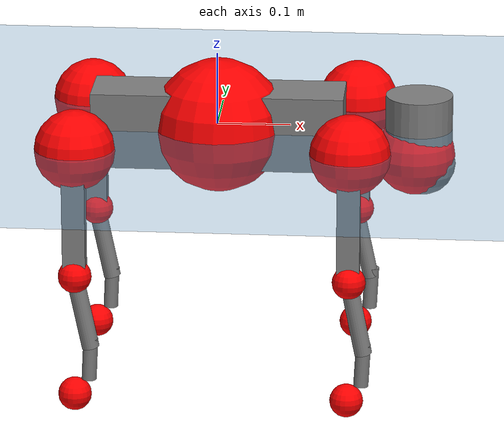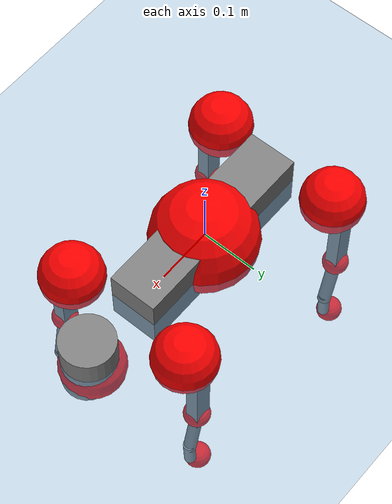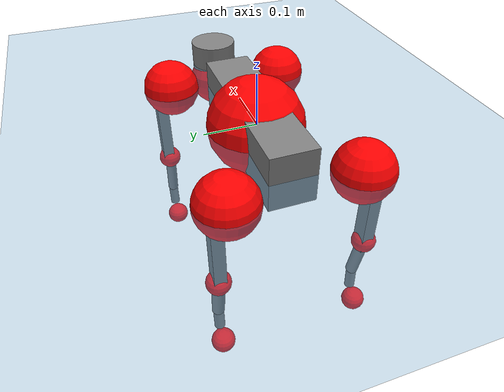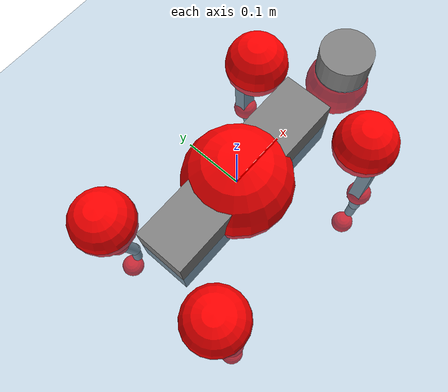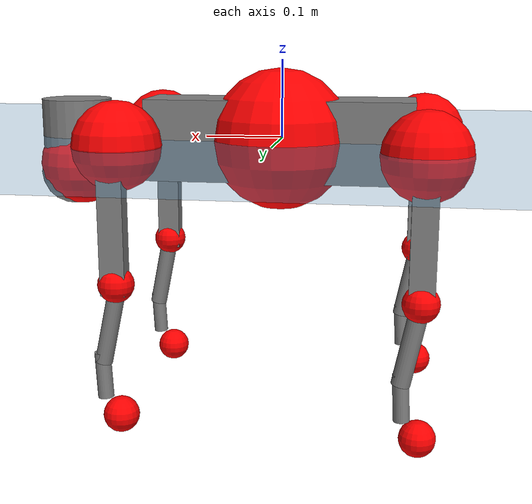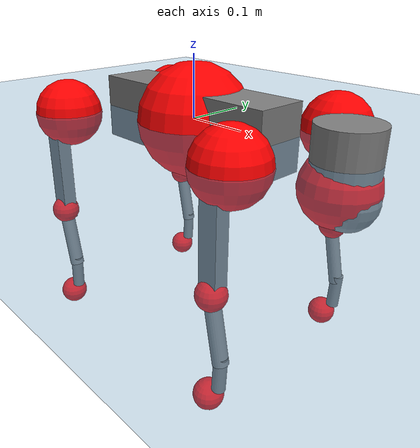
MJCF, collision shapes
<mujoco model="go2">
  <compiler angle="radian" assetdir="assets" balanceinertia="true" inertiafromgeom="false"/>

  <option timestep="0.005" density="1.2" viscosity="2e-05"/>

  <size nkey="1"/>

  <visual>
    <quality shadowsize="8192"/>
    <map shadowclip="0.5"/>
  </visual>

  <default>
    <default class="/">
      <geom contype="0" conaffinity="0" group="1" solref="-1000 -80"/>
      <site size="0.01 0.005 0.005" group="5"/>
      <general forcelimited="true" biastype="affine" gainprm="20" biasprm="0 -20 -0.5"/>
      <default class="go2">
        <joint armature="0.01" damping="0.01" frictionloss="0.2"/>
        <geom condim="1" margin="0.001"/>
        <default class="visual">
          <geom type="mesh" group="2"/>
        </default>
        <default class="collision">
          <geom group="3"/>
          <default class="foot">
            <geom size="0.022 0 0" condim="6" priority="1" friction="0.8 0.02 0.01" solimp="0.015 1 0.022"/>
          </default>
        </default>
        <default class="reward_collision_sphere">
          <geom group="5" rgba="1 0 0 1"/>
        </default>
      </default>
    </default>
  </default>

  <asset>
    <texture type="skybox" colorspace="auto" name="//unnamed_texture_0" builtin="gradient" rgb1="0.95 0.95 0.95" rgb2="0.95 0.95 0.95" width="100" height="600"/>
    <texture type="2d" colorspace="auto" name="texplane" builtin="checker" rgb1="0.345 0.575 0.748" rgb2="0.345 0.575 0.748" markrgb="1 1 1" width="512" height="512"/>
    <material name="MatPlane" class="/" texture="texplane" texuniform="true" texrepeat="2 2" specular="0.9"/>
    <material name="metal" class="/" rgba="0.9 0.95 0.95 1"/>
    <material name="black" class="/" rgba="0 0 0 1"/>
    <material name="white" class="/"/>
    <material name="gray" class="/" rgba="0.671705 0.692426 0.77427 1"/>
    <mesh name="base_0" class="/" file="base_0.obj"/>
    <mesh name="base_1" class="/" file="base_1.obj"/>
    <mesh name="base_2" class="/" file="base_2.obj"/>
    <mesh name="base_3" class="/" file="base_3.obj"/>
    <mesh name="base_4" class="/" file="base_4.obj"/>
    <mesh name="hip_0" class="/" file="hip_0.obj"/>
    <mesh name="hip_1" class="/" file="hip_1.obj"/>
    <mesh name="thigh_0" class="/" file="thigh_0.obj"/>
    <mesh name="thigh_1" class="/" file="thigh_1.obj"/>
    <mesh name="thigh_mirror_0" class="/" file="thigh_mirror_0.obj"/>
    <mesh name="thigh_mirror_1" class="/" file="thigh_mirror_1.obj"/>
    <mesh name="calf_0" class="/" file="calf_0.obj"/>
    <mesh name="calf_1" class="/" file="calf_1.obj"/>
    <mesh name="calf_mirror_0" class="/" file="calf_mirror_0.obj"/>
    <mesh name="calf_mirror_1" class="/" file="calf_mirror_1.obj"/>
    <mesh name="foot" class="/" file="foot.obj"/>
  </asset>

  <worldbody>
    <geom name="floor" class="/" size="100 100 0.125" type="plane" group="0" material="MatPlane"/>
    <light name="toplight_shadow" class="/" pos="0 0 5" dir="0.0990148 0.0990148 -0.990148" type="directional" ambient="0.04 0.04 0.04" diffuse="0.55 0.55 0.55" specular="0.12 0.12 0.12"/>
    <light name="toplight_fill" class="/" pos="0 0 5" dir="0.0990148 0.0990148 -0.990148" type="directional" castshadow="false" ambient="0.04 0.04 0.04" diffuse="0.3 0.3 0.3" specular="0.08 0.08 0.08"/>
    <body name="trunk" childclass="go2" pos="0.00205377 0.000513755 -0.0017085" quat="0.999999 -0.000825504 0.000192655 0.000928476">
      <inertial pos="0.0177993 0.00166639 -0.00339341" quat="0.000650999 0.710306 -0.0007682 0.703892" mass="5.25145" diaginertia="0.0887472 0.091054 0.00829761"/>
      <joint name="//unnamed_joint_0" type="free" armature="0" damping="0" frictionloss="0"/>
      <geom name="//unnamed_geom_1" class="visual" material="black" mesh="base_0"/>
      <geom name="//unnamed_geom_2" class="visual" material="black" mesh="base_1"/>
      <geom name="//unnamed_geom_3" class="visual" material="black" mesh="base_2"/>
      <geom name="//unnamed_geom_4" class="visual" material="white" mesh="base_3"/>
      <geom name="//unnamed_geom_5" class="visual" material="gray" mesh="base_4"/>
      <geom name="trunk_1" class="collision" size="0.172223 0.042804 0.0521889" type="box"/>
      <geom name="trunk_2" class="collision" size="0.0457797 0.0412017" pos="0.273955 0 0.00802434" type="cylinder"/>
      <geom name="trunk_3" class="collision" size="0.0430329" pos="0.281645 0 -0.0481461"/>
      <geom name="//unnamed_geom_9" class="reward_collision_sphere" size="0.0915594"/>
      <geom name="//unnamed_geom_10" class="reward_collision_sphere" size="0.0549356" pos="0.269149 0 -0.0361095"/>
      <site name="imu" pos="-0.0210864 0.0107816 0.0470383" size="0.00915594"/>
      <camera name="track" pos="0 -1.9662 0" quat="0.707107 0.707107 0 0" mode="trackcom"/>
      <camera name="ego_camera" pos="0.299909 0 0.0361095" quat="-0.5 -0.5 0.5 0.5"/>
      <body name="FL_hip" pos="0.185363 0.0470831 0.00278333" quat="1 -0.000510088 -4.01166e-05 0.000416553">
        <inertial pos="-0.00564787 -0.000549607 0.00122835" quat="0.496745 0.502967 0.503362 0.496886" mass="0.505059" diaginertia="0.000737537 0.00055632 0.000159966"/>
        <joint name="FL_hip_joint" pos="0 0 0" axis="0.999953 0.00940804 0.00233243" range="-1.00448 1.06978" armature="0.00907472" damping="0.0182204" frictionloss="0.18026"/>
        <geom name="//unnamed_geom_11" class="visual" material="metal" mesh="hip_0"/>
        <geom name="//unnamed_geom_12" class="visual" material="gray" mesh="hip_1"/>
        <geom name="//unnamed_geom_13" class="collision" size="0.0421173 0.0183119" pos="0 0.0786482 0" quat="0.707107 0.707107 0 0" type="cylinder"/>
        <geom name="//unnamed_geom_14" class="reward_collision_sphere" size="0.0549356" pos="0 0.0688171 0"/>
        <body name="FL_thigh" pos="0.000606289 0.0945095 0.00302515" quat="0.999999 -0.000750118 -0.000837204 -0.00065991">
          <inertial pos="-0.00126331 -0.0243037 -0.0287229" quat="0.829491 0.0845125 -0.0198236 0.551734" mass="0.857329" diaginertia="0.00482276 0.00514238 0.000288929"/>
          <joint name="FL_thigh_joint" pos="0 0 0" axis="0.00139016 0.999996 -0.00263997" range="-1.53254 3.48973" armature="0.00865882" damping="0.0147442" frictionloss="0.176984"/>
          <geom name="//unnamed_geom_15" class="visual" material="metal" mesh="thigh_0"/>
          <geom name="//unnamed_geom_16" class="visual" material="gray" mesh="thigh_1"/>
          <geom name="//unnamed_geom_17" class="collision" size="0.0975107 0.011216 0.0155651" pos="0 0 -0.0854592" quat="0.707107 0 0.707107 0" type="box"/>
          <body name="FL_calf" pos="-0.000865118 -0.00271495 -0.171168" quat="0.999999 0.000457711 -0.00102585 0.00051711">
            <inertial pos="0.00331282 -0.000611558 -0.110233" quat="0.708678 0.0056961 -0.00318572 0.705502" mass="0.184933" diaginertia="0.00121503 0.00142019 1.81344e-05"/>
            <joint name="FL_calf_joint" pos="0 0 0" axis="-0.00738536 0.999851 0.0156316" stiffness="0.0129144" range="-2.7743 -0.848228" armature="0.00996314" damping="0" frictionloss="0.20201"/>
            <geom name="//unnamed_geom_18" class="visual" material="gray" mesh="calf_0"/>
            <geom name="//unnamed_geom_19" class="visual" material="black" mesh="calf_1"/>
            <geom name="FL_calf0" class="collision" size="0.0109871 0.0549356" pos="0.00768996 0 -0.0481461" quat="0.994493 0 -0.104807 0" type="cylinder"/>
            <geom name="//unnamed_geom_21" class="collision" size="0.0100715 0.0297568" pos="0.0192249 0 -0.11876" quat="0.999688 0 0.0249974 0" type="cylinder"/>
            <geom name="//unnamed_geom_22" class="visual" pos="0 0 -0.170918" quat="1 0 0 0" material="black" mesh="foot"/>
            <geom name="FL_foot" class="foot" size="0.0178181" pos="-0.00192249 0 -0.170918"/>
            <geom name="//unnamed_geom_24" class="reward_collision_sphere" size="0.0228898"/>
            <geom name="//unnamed_geom_25" class="reward_collision_sphere" size="0.0228898" pos="-0.00192249 0 -0.170918"/>
            <site name="FL_foot" class="foot" pos="-0.00192249 0 -0.170918" size="0.00915594"/>
          </body>
        </body>
      </body>
      <body name="FR_hip" pos="0.185542 -0.0458188 -0.0016216" quat="0.999999 -0.00124525 -0.000124019 0.00028535">
        <inertial pos="-0.00282171 -0.00457761 4.22715e-05" quat="0.510194 0.500972 0.494668 0.493997" mass="0.515429" diaginertia="0.00068063 0.000531856 0.000150214"/>
        <joint name="FR_hip_joint" pos="0 0 0" axis="0.99991 0.00289391 0.013063" range="-1.03813 1.05046" armature="0.00918472" damping="0.00730426" frictionloss="0.157949"/>
        <geom name="//unnamed_geom_26" class="visual" pos="0 1.5739e-09 6.7508e-08" quat="4.63268e-05 1 0 0" material="metal" mesh="hip_0"/>
        <geom name="//unnamed_geom_27" class="visual" pos="0 2.55149e-09 -1.66973e-07" quat="4.63268e-05 1 0 0" material="gray" mesh="hip_1"/>
        <geom name="//unnamed_geom_28" class="collision" size="0.0421173 0.0183119" pos="0 -0.0786482 0" quat="0.707107 0.707107 0 0" type="cylinder"/>
        <geom name="//unnamed_geom_29" class="reward_collision_sphere" size="0.0549356" pos="0 -0.0688171 0"/>
        <body name="FR_thigh" pos="0.000139624 -0.0958855 0.00108853" quat="1 0.000172604 -4.62288e-06 -8.97719e-05">
          <inertial pos="-0.00104093 0.0192703 -0.0253929" quat="0.555434 -0.0313943 0.0885476 0.826236" mass="0.891464" diaginertia="0.00482164 0.00521855 0.000295776"/>
          <joint name="FR_thigh_joint" pos="0 0 0" axis="0.000248062 -0.999986 0.00531151" range="-3.46959 1.62451" armature="0.00912424" damping="0.0105923" frictionloss="0.197055"/>
          <geom name="//unnamed_geom_30" class="visual" material="metal" mesh="thigh_mirror_0"/>
          <geom name="//unnamed_geom_31" class="visual" material="gray" mesh="thigh_mirror_1"/>
          <geom name="//unnamed_geom_32" class="collision" size="0.0975107 0.011216 0.0155651" pos="0 0 -0.0854592" quat="0.707107 0 0.707107 0" type="box"/>
          <body name="FR_calf" pos="0.00132334 -0.00305001 -0.171647" quat="1 -1.60449e-05 2.39669e-06 -4.5598e-05">
            <inertial pos="0.00609866 0.000233267 -0.113129" quat="0.708764 0.00611047 0.00436179 0.705406" mass="0.185742" diaginertia="0.00122672 0.00134638 1.71167e-05"/>
            <joint name="FR_calf_joint" pos="0 0 0" axis="0.00836987 -0.999921 -0.0094038" range="0.828004 2.776" armature="0.00893847" damping="0.02628" frictionloss="0.172508"/>
            <geom name="//unnamed_geom_33" class="visual" material="gray" mesh="calf_mirror_0"/>
            <geom name="//unnamed_geom_34" class="visual" material="black" mesh="calf_mirror_1"/>
            <geom name="FR_calf0" class="collision" size="0.0119027 0.0549356" pos="0.00961245 0 -0.0481461" quat="0.995004 0 -0.0998334 0" type="cylinder"/>
            <geom name="//unnamed_geom_36" class="collision" size="0.0100715 0.0297568" pos="0.0192249 0 -0.11876" quat="0.999688 0 0.0249974 0" type="cylinder"/>
            <geom name="//unnamed_geom_37" class="visual" pos="0 0 -0.170918" quat="1 0 0 0" material="black" mesh="foot"/>
            <geom name="FR_foot" class="foot" size="0.0211426" pos="-0.00192249 0 -0.170918"/>
            <geom name="//unnamed_geom_39" class="reward_collision_sphere" size="0.0228898"/>
            <geom name="//unnamed_geom_40" class="reward_collision_sphere" size="0.0228898" pos="-0.00192249 0 -0.170918"/>
            <site name="FR_foot" class="foot" pos="-0.00192249 0 -0.170918" size="0.00915594"/>
          </body>
        </body>
      </body>
      <body name="RL_hip" pos="-0.185575 0.0457214 -0.0030709" quat="1 -8.79315e-06 -9.85861e-06 3.18647e-05">
        <inertial pos="0.00591959 0.00454135 -0.00262733" quat="0.512388 0.492814 0.498671 0.495903" mass="0.531397" diaginertia="0.000711845 0.000539485 0.000163353"/>
        <joint name="RL_hip_joint" pos="0 0 0" axis="-0.999864 -0.00534184 -0.0156184" stiffness="0.0122721" range="-1.02812 0.997146" armature="0.0079808" damping="0.00316178" frictionloss="0.207513"/>
        <geom name="//unnamed_geom_41" class="visual" pos="-1.3835e-09 0 -2.71197e-07" quat="4.63268e-05 0 1 0" material="metal" mesh="hip_0"/>
        <geom name="//unnamed_geom_42" class="visual" pos="-2.24281e-09 0 -2.40513e-07" quat="4.63268e-05 0 1 0" material="gray" mesh="hip_1"/>
        <geom name="//unnamed_geom_43" class="collision" size="0.0421173 0.0183119" pos="0 0.0786482 0" quat="0.707107 0.707107 0 0" type="cylinder"/>
        <geom name="//unnamed_geom_44" class="reward_collision_sphere" size="0.0549356" pos="0 0.0688171 0"/>
        <body name="RL_thigh" pos="0.000244948 0.0904077 0.00213226" quat="1 -0.000457398 -0.000107328 -7.98194e-05">
          <inertial pos="-0.00343454 -0.0214855 -0.0271857" quat="0.828738 0.0879316 -0.0212656 0.552277" mass="0.908336" diaginertia="0.00487326 0.00528501 0.000301253"/>
          <joint name="RL_thigh_joint" pos="0 0 0" axis="-0.00475829 0.999884 0.0144877" stiffness="0.0122383" range="-0.528401 4.54188" armature="0.0103763" damping="0" frictionloss="0.183768"/>
          <geom name="//unnamed_geom_45" class="visual" material="metal" mesh="thigh_0"/>
          <geom name="//unnamed_geom_46" class="visual" material="gray" mesh="thigh_1"/>
          <geom name="//unnamed_geom_47" class="collision" size="0.0975107 0.011216 0.0155651" pos="0 0 -0.0854592" quat="0.707107 0 0.707107 0" type="box"/>
          <body name="RL_calf" pos="0.000319632 0.000248776 -0.173433" quat="1 0.000175012 -0.000181471 -4.24121e-05">
            <inertial pos="0.00531871 0.00173938 -0.113599" quat="0.712175 0.00201208 -0.0145349 0.701849" mass="0.186113" diaginertia="0.00119716 0.00134779 1.73082e-05"/>
            <joint name="RL_calf_joint" pos="0 0 0" axis="-0.000397701 1 6.14964e-05" range="-2.72241 -0.804652" armature="0.0100995" damping="0" frictionloss="0.204273"/>
            <geom name="//unnamed_geom_48" class="visual" material="gray" mesh="calf_0"/>
            <geom name="//unnamed_geom_49" class="visual" material="black" mesh="calf_1"/>
            <geom name="RL_calf0" class="collision" size="0.0119027 0.0549356" pos="0.00961245 0 -0.0481461" quat="0.995004 0 -0.0998334 0" type="cylinder"/>
            <geom name="//unnamed_geom_51" class="collision" size="0.0100715 0.0297568" pos="0.0192249 0 -0.11876" quat="0.999688 0 0.0249974 0" type="cylinder"/>
            <geom name="//unnamed_geom_52" class="visual" pos="0 0 -0.170918" quat="1 0 0 0" material="black" mesh="foot"/>
            <geom name="RL_foot" class="foot" size="0.0165172" pos="-0.00192249 0 -0.170918"/>
            <geom name="//unnamed_geom_54" class="reward_collision_sphere" size="0.0228898"/>
            <geom name="//unnamed_geom_55" class="reward_collision_sphere" size="0.0228898" pos="-0.00192249 0 -0.170918"/>
            <site name="RL_foot" class="foot" pos="-0.00192249 0 -0.170918" size="0.00915594"/>
          </body>
        </body>
      </body>
      <body name="RR_hip" pos="-0.185034 -0.0483383 -0.00231413" quat="1 0.000372184 -7.46572e-05 -0.000868961">
        <inertial pos="0.00747278 0.00103869 -0.00261364" quat="0.493333 0.504808 0.50382 0.497953" mass="0.519817" diaginertia="0.000717848 0.000543596 0.000160592"/>
        <joint name="RR_hip_joint" pos="0 0 0" axis="-0.999934 0.0081795 0.00803487" stiffness="0.00910433" range="-1.02751 1.02868" armature="0.00831486" damping="0.00908144" frictionloss="0.174601"/>
        <geom name="//unnamed_geom_56" class="visual" pos="1.38425e-09 1.5739e-09 -3.38705e-07" quat="2.14617e-09 4.63268e-05 4.63268e-05 -1" material="metal" mesh="hip_0"/>
        <geom name="//unnamed_geom_57" class="visual" pos="2.24094e-09 2.55149e-09 -7.35404e-08" quat="2.14617e-09 4.63268e-05 4.63268e-05 -1" material="gray" mesh="hip_1"/>
        <geom name="//unnamed_geom_58" class="collision" size="0.0421173 0.0183119" pos="0 -0.0786482 0" quat="0.707107 0.707107 0 0" type="cylinder"/>
        <geom name="//unnamed_geom_59" class="reward_collision_sphere" size="0.0549356" pos="0 -0.0688171 0"/>
        <body name="RR_thigh" pos="0.000883345 -0.0938899 -0.00158197" quat="1 -9.37596e-05 3.59308e-05 -4.86173e-05">
          <inertial pos="-0.00228152 0.0221932 -0.0263067" quat="0.551996 -0.0221875 0.0834142 0.829367" mass="0.852544" diaginertia="0.00493796 0.00553007 0.000291263"/>
          <joint name="RR_thigh_joint" pos="0 0 0" axis="-0.00768745 -0.99997 0.000392245" stiffness="0.00510032" range="-4.54406 0.578377" armature="0.00955436" damping="0.00972864" frictionloss="0.174919"/>
          <geom name="//unnamed_geom_60" class="visual" material="metal" mesh="thigh_mirror_0"/>
          <geom name="//unnamed_geom_61" class="visual" material="gray" mesh="thigh_mirror_1"/>
          <geom name="//unnamed_geom_62" class="collision" size="0.0975107 0.011216 0.0155651" pos="0 0 -0.0854592" quat="0.707107 0 0.707107 0" type="box"/>
          <body name="RR_calf" pos="0.000195371 -0.00186164 -0.169706" quat="1 -0.000137766 9.39845e-05 -0.00017708">
            <inertial pos="0.00310602 -0.000464228 -0.114177" quat="0.701006 0.00259235 -0.00567441 0.713129" mass="0.187243" diaginertia="0.00124183 0.00135673 1.8371e-05"/>
            <joint name="RR_calf_joint" pos="0 0 0" axis="0.00661117 -0.999829 -0.0172812" stiffness="0.00227469" range="0.834569 2.7178" armature="0.00922335" damping="0.0242448" frictionloss="0.18434"/>
            <geom name="//unnamed_geom_63" class="visual" material="gray" mesh="calf_mirror_0"/>
            <geom name="//unnamed_geom_64" class="visual" material="black" mesh="calf_mirror_1"/>
            <geom name="RR_calf0" class="collision" size="0.0119027 0.0549356" pos="0.00961245 0 -0.0481461" quat="0.995004 0 -0.0998334 0" type="cylinder"/>
            <geom name="//unnamed_geom_66" class="collision" size="0.0100715 0.0297568" pos="0.0192249 0 -0.11876" quat="0.999688 0 0.0249974 0" type="cylinder"/>
            <geom name="//unnamed_geom_67" class="visual" pos="0 0 -0.170918" quat="1 0 0 0" material="black" mesh="foot"/>
            <geom name="RR_foot" class="foot" size="0.019681" pos="-0.00192249 0 -0.170918"/>
            <geom name="//unnamed_geom_69" class="reward_collision_sphere" size="0.0228898"/>
            <geom name="//unnamed_geom_70" class="reward_collision_sphere" size="0.0228898" pos="-0.00192249 0 -0.170918"/>
            <site name="RR_foot" class="foot" pos="-0.00192249 0 -0.170918" size="0.00915594"/>
          </body>
        </body>
      </body>
    </body>
  </worldbody>

  <contact>
    <pair class="/" geom1="floor" geom2="FL_foot" name="//unnamed_contact_0"/>
    <pair class="/" geom1="floor" geom2="FR_foot" name="//unnamed_contact_1"/>
    <pair class="/" geom1="floor" geom2="RL_foot" name="//unnamed_contact_2"/>
    <pair class="/" geom1="floor" geom2="RR_foot" name="//unnamed_contact_3"/>
  </contact>

  <actuator>
    <general name="FL_hip" class="/" joint="FL_hip_joint" forcerange="-21.7054 21.7054" gainprm="19.4836" biasprm="0 -19.4836 -0.427907"/>
    <general name="FL_thigh" class="/" joint="FL_thigh_joint" forcerange="-20.0709 20.0709" gainprm="19.4836" biasprm="0 -19.4836 -0.427907"/>
    <general name="FL_calf" class="/" joint="FL_calf_joint" forcerange="-43.1261 43.1261" gainprm="19.4836" biasprm="0 -19.4836 -0.427907"/>
    <general name="FR_hip" class="/" joint="FR_hip_joint" forcerange="-21.4787 21.4787" gainprm="19.4836" biasprm="0 -19.4836 -0.427907"/>
    <general name="FR_thigh" class="/" joint="FR_thigh_joint" forcerange="-23.3368 23.3368" gainprm="19.4836" biasprm="0 -19.4836 -0.427907"/>
    <general name="FR_calf" class="/" joint="FR_calf_joint" forcerange="-40.4397 40.4397" gainprm="19.4836" biasprm="0 -19.4836 -0.427907"/>
    <general name="RL_hip" class="/" joint="RL_hip_joint" forcerange="-23.5617 23.5617" gainprm="19.4836" biasprm="0 -19.4836 -0.427907"/>
    <general name="RL_thigh" class="/" joint="RL_thigh_joint" forcerange="-20.3458 20.3458" gainprm="19.4836" biasprm="0 -19.4836 -0.427907"/>
    <general name="RL_calf" class="/" joint="RL_calf_joint" forcerange="-37.7028 37.7028" gainprm="19.4836" biasprm="0 -19.4836 -0.427907"/>
    <general name="RR_hip" class="/" joint="RR_hip_joint" forcerange="-19.5598 19.5598" gainprm="19.4836" biasprm="0 -19.4836 -0.427907"/>
    <general name="RR_thigh" class="/" joint="RR_thigh_joint" forcerange="-23.7478 23.7478" gainprm="19.4836" biasprm="0 -19.4836 -0.427907"/>
    <general name="RR_calf" class="/" joint="RR_calf_joint" forcerange="-39.9942 39.9942" gainprm="19.4836" biasprm="0 -19.4836 -0.427907"/>
  </actuator>

  <sensor>
    <gyro site="imu" name="imu_angular_velocity"/>
    <velocimeter site="imu" name="imu_linear_velocity"/>
    <framelinvel objtype="site" objname="FL_foot" name="FL_foot_global_linear_velocity"/>
    <framelinvel objtype="site" objname="FR_foot" name="FR_foot_global_linear_velocity"/>
    <framelinvel objtype="site" objname="RL_foot" name="RL_foot_global_linear_velocity"/>
    <framelinvel objtype="site" objname="RR_foot" name="RR_foot_global_linear_velocity"/>
  </sensor>

  <keyframe>
    <key name="home" qpos="0 0 0.325 1 0 0 0 0.1 0.8 -1.5 -0.1 -0.8 1.5 -0.1 0.8 -1.5 0.1 -0.8 1.5"/>
  </keyframe>
</mujoco>
